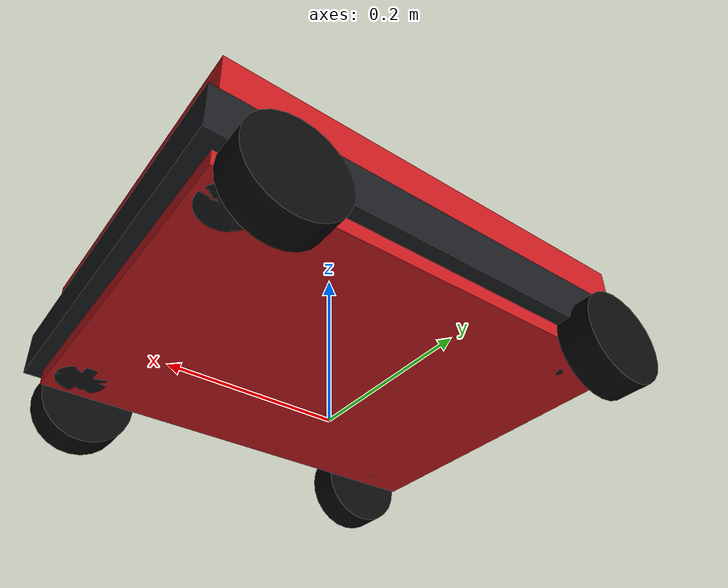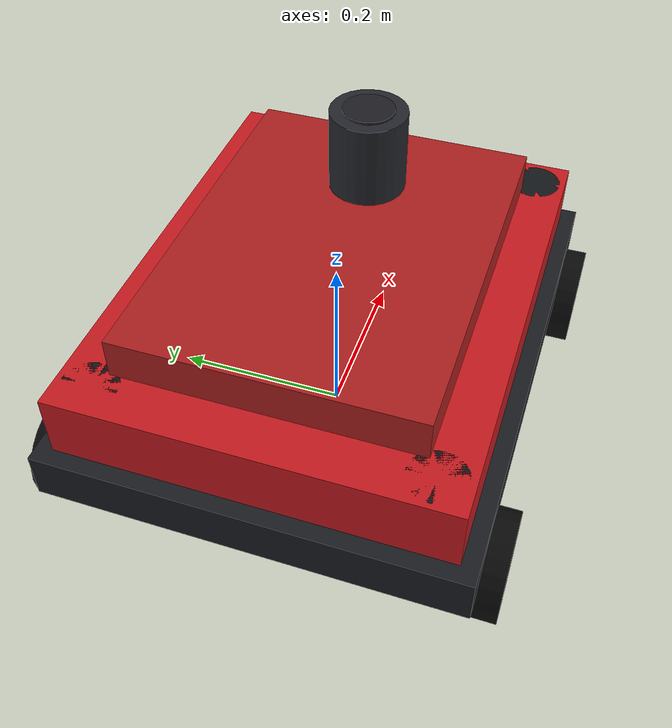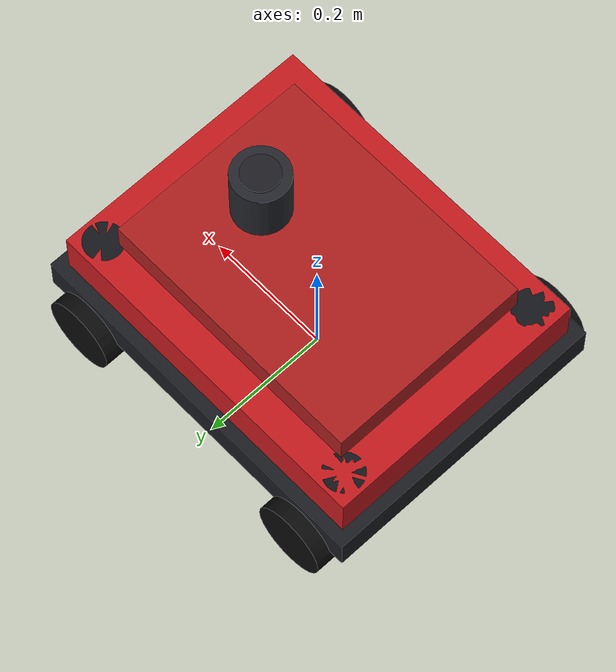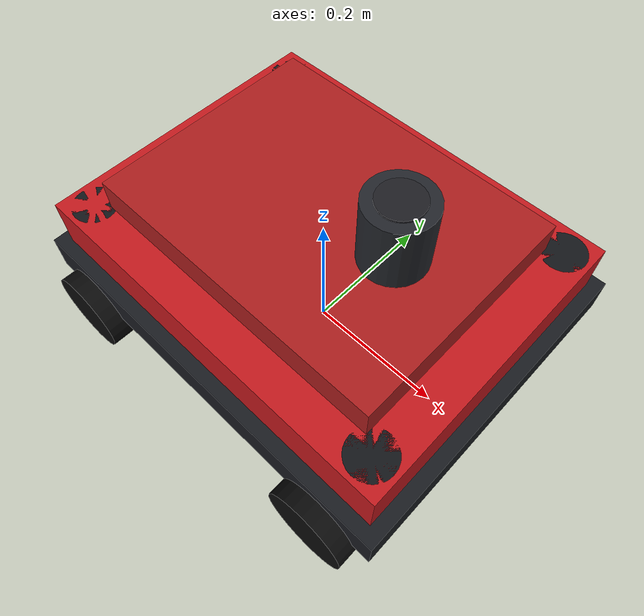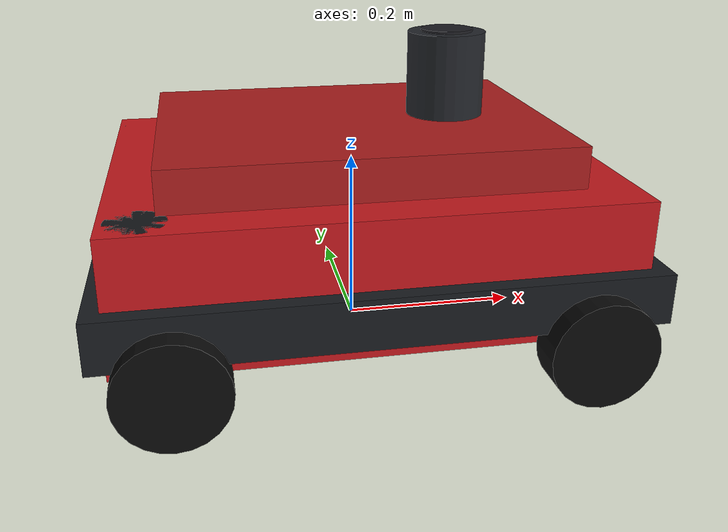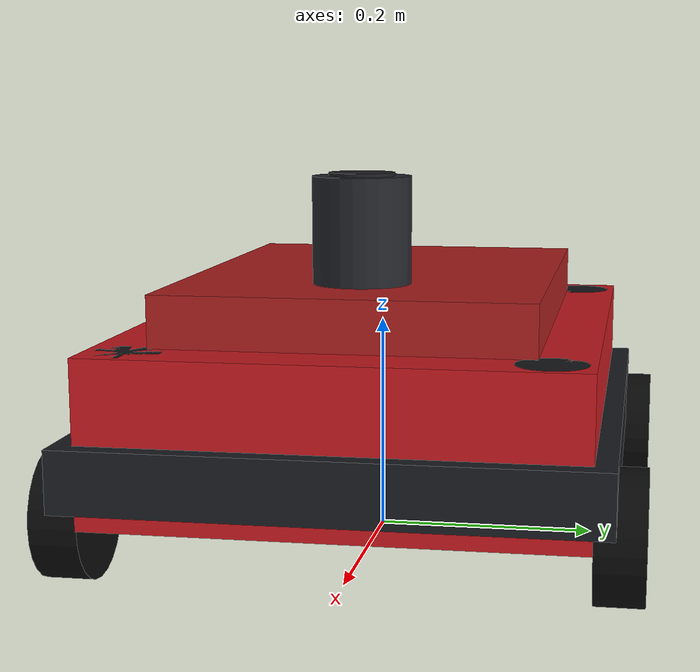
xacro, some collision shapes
<?xml version="1.0"?>
<robot xmlns:xacro="http://www.ros.org/wiki/xacro" name="omni_mecanum_amr">
  <xacro:arg name="robot_name" default="omni_1"/>
  <xacro:arg name="controllers_file" default=""/>
  <xacro:include filename="$(find hetero_fleet_description)/urdf/common.xacro"/>
  <xacro:property name="controllers_file" value="$(arg controllers_file)"/>
  <xacro:property name="robot_name" value="$(arg robot_name)"/>
  <xacro:property name="s" value="0.602770520669"/>
  <xacro:property name="base_length" value="${0.90 * s}"/>
  <xacro:property name="base_width" value="${0.70 * s}"/>
  <xacro:property name="base_height" value="${0.24 * s}"/>
  <xacro:property name="wheel_radius" value="${0.095 * s}"/>
  <xacro:property name="wheel_width" value="${0.070 * s}"/>
  <link name="base_footprint"/>
  <link name="base_link">
    <inertial><mass value="${42.0 * s**3}"/><inertia ixx="${1.75 * s**5}" ixy="0" ixz="0" iyy="${2.25 * s**5}" iyz="0" izz="${3.10 * s**5}"/></inertial>
    <visual><origin xyz="0 0 0"/><geometry><mesh filename="package://hetero_fleet_description/meshes/omni_shell.stl" scale="${s} ${s} ${s}"/></geometry><material name="red"><color rgba="0.78 0.10 0.12 1"/></material></visual>
    <collision><origin xyz="0 0 ${base_height / 2}"/><geometry><box size="${base_length} ${base_width} ${base_height}"/></geometry></collision>
  </link>
  <joint name="base_footprint_joint" type="fixed"><parent link="base_footprint"/><child link="base_link"/><origin xyz="0 0 ${wheel_radius}"/></joint>
  <link name="underbody_link"><visual><origin xyz="0 0 ${0.06 * s}"/><geometry><box size="${0.82 * s} ${0.62 * s} ${0.12 * s}"/></geometry><material name="underbody"><color rgba="0.14 0.15 0.16 1"/></material></visual><collision><origin xyz="0 0 ${0.06 * s}"/><geometry><box size="${0.82 * s} ${0.62 * s} ${0.12 * s}"/></geometry></collision></link>
  <joint name="underbody_joint" type="fixed"><parent link="base_link"/><child link="underbody_link"/><origin xyz="0 0 ${0.01 * s}"/></joint>
  <link name="omni_bumper_link"><visual><origin xyz="0 0 ${0.045 * s}"/><geometry><box size="${0.96 * s} ${0.76 * s} ${0.09 * s}"/></geometry><material name="bumper"><color rgba="0.10 0.11 0.13 1"/></material></visual><collision><origin xyz="0 0 ${0.045 * s}"/><geometry><box size="${0.96 * s} ${0.76 * s} ${0.09 * s}"/></geometry></collision></link>
  <joint name="omni_bumper_joint" type="fixed"><parent link="base_link"/><child link="omni_bumper_link"/><origin xyz="0 0 ${0.03 * s}"/></joint>
  <link name="omni_deck_link"><visual><origin xyz="0 0 ${0.035 * s}"/><geometry><box size="${0.72 * s} ${0.54 * s} ${0.08 * s}"/></geometry><material name="deck"><color rgba="0.68 0.12 0.12 1"/></material></visual><collision><origin xyz="0 0 ${0.035 * s}"/><geometry><box size="${0.72 * s} ${0.54 * s} ${0.08 * s}"/></geometry></collision></link>
  <joint name="omni_deck_joint" type="fixed"><parent link="base_link"/><child link="omni_deck_link"/><origin xyz="0 0 ${base_height}"/></joint>

  <link name="front_left_corner_guard"><visual><origin xyz="0 0 ${0.12 * s}"/><geometry><cylinder radius="${0.05 * s}" length="${0.24 * s}"/></geometry><material name="guard"><color rgba="0.08 0.09 0.10 1"/></material></visual><collision><origin xyz="0 0 ${0.12 * s}"/><geometry><cylinder radius="${0.05 * s}" length="${0.24 * s}"/></geometry></collision></link>
  <joint name="front_left_corner_guard_joint" type="fixed"><parent link="base_link"/><child link="front_left_corner_guard"/><origin xyz="${0.39 * s} ${0.29 * s} 0"/></joint>
  <link name="front_right_corner_guard"><visual><origin xyz="0 0 ${0.12 * s}"/><geometry><cylinder radius="${0.05 * s}" length="${0.24 * s}"/></geometry><material name="guard"><color rgba="0.08 0.09 0.10 1"/></material></visual><collision><origin xyz="0 0 ${0.12 * s}"/><geometry><cylinder radius="${0.05 * s}" length="${0.24 * s}"/></geometry></collision></link>
  <joint name="front_right_corner_guard_joint" type="fixed"><parent link="base_link"/><child link="front_right_corner_guard"/><origin xyz="${0.39 * s} ${-0.29 * s} 0"/></joint>
  <link name="rear_left_corner_guard"><visual><origin xyz="0 0 ${0.12 * s}"/><geometry><cylinder radius="${0.05 * s}" length="${0.24 * s}"/></geometry><material name="guard"><color rgba="0.08 0.09 0.10 1"/></material></visual><collision><origin xyz="0 0 ${0.12 * s}"/><geometry><cylinder radius="${0.05 * s}" length="${0.24 * s}"/></geometry></collision></link>
  <joint name="rear_left_corner_guard_joint" type="fixed"><parent link="base_link"/><child link="rear_left_corner_guard"/><origin xyz="${-0.39 * s} ${0.29 * s} 0"/></joint>
  <link name="rear_right_corner_guard"><visual><origin xyz="0 0 ${0.12 * s}"/><geometry><cylinder radius="${0.05 * s}" length="${0.24 * s}"/></geometry><material name="guard"><color rgba="0.08 0.09 0.10 1"/></material></visual><collision><origin xyz="0 0 ${0.12 * s}"/><geometry><cylinder radius="${0.05 * s}" length="${0.24 * s}"/></geometry></collision></link>
  <joint name="rear_right_corner_guard_joint" type="fixed"><parent link="base_link"/><child link="rear_right_corner_guard"/><origin xyz="${-0.39 * s} ${-0.29 * s} 0"/></joint>

  <xacro:macro name="mecanum_wheel" params="name x y">
    <link name="${name}_wheel_link">
      <inertial><mass value="${0.65 * s**3}"/><inertia ixx="${0.004 * s**5}" ixy="0" ixz="0" iyy="${0.002 * s**5}" iyz="0" izz="${0.004 * s**5}"/></inertial>
      <visual><origin rpy="${pi / 2} 0 0"/><geometry><cylinder radius="${wheel_radius}" length="${wheel_width}"/></geometry><material name="rubber"><color rgba="0.04 0.04 0.04 1"/></material></visual>
      <collision><origin rpy="${pi / 2} 0 0"/><geometry><cylinder radius="${wheel_radius}" length="${wheel_width}"/></geometry></collision>
    </link>
    <joint name="${name}_wheel_joint" type="continuous"><parent link="base_link"/><child link="${name}_wheel_link"/><origin xyz="${x} ${y} 0"/><axis xyz="0 1 0"/><limit effort="15" velocity="18"/></joint>
  </xacro:macro>
  <xacro:mecanum_wheel name="front_left" x="${base_length / 2 - 0.10 * s}" y="${base_width / 2 + wheel_width / 2}"/>
  <xacro:mecanum_wheel name="front_right" x="${base_length / 2 - 0.10 * s}" y="${-base_width / 2 - wheel_width / 2}"/>
  <xacro:mecanum_wheel name="rear_left" x="${-base_length / 2 + 0.10 * s}" y="${base_width / 2 + wheel_width / 2}"/>
  <xacro:mecanum_wheel name="rear_right" x="${-base_length / 2 + 0.10 * s}" y="${-base_width / 2 - wheel_width / 2}"/>

  <link name="lidar_link">
    <inertial><mass value="0.15"/><inertia ixx="0.0002" ixy="0" ixz="0" iyy="0.0002" iyz="0" izz="0.0003"/></inertial>
    <visual><geometry><cylinder radius="${0.048 * s}" length="${0.05 * s}"/></geometry><material name="lidar"><color rgba="0.12 0.12 0.14 1"/></material></visual><collision><geometry><cylinder radius="${0.048 * s}" length="${0.05 * s}"/></geometry></collision>
  </link>
  <link name="lidar_mount_link"><visual><origin xyz="0 0 ${0.08 * s}"/><geometry><cylinder radius="${0.072 * s}" length="${0.16 * s}"/></geometry><material name="mount"><color rgba="0.14 0.15 0.17 1"/></material></visual><collision><origin xyz="0 0 ${0.08 * s}"/><geometry><cylinder radius="${0.065 * s}" length="${0.14 * s}"/></geometry></collision></link>
  <joint name="lidar_mount_joint" type="fixed"><parent link="omni_deck_link"/><child link="lidar_mount_link"/><origin xyz="${0.18 * s} 0 ${0.07 * s}"/></joint>
  <joint name="lidar_joint" type="fixed"><parent link="lidar_mount_link"/><child link="lidar_link"/><origin xyz="0 0 ${0.14 * s}"/></joint>
  <!-- Lidar height lands at ~0.29 m, inside the map's obstacle band of
       maps/geomap.pgm, so scan and map agree about what is in the way. -->
  <gazebo reference="lidar_link"><sensor name="${robot_name}_lidar" type="gpu_lidar"><always_on>1</always_on><visualize>false</visualize><update_rate>20</update_rate><topic>/${robot_name}/scan</topic><frame_id>lidar_link</frame_id><lidar><scan><horizontal><samples>1080</samples><resolution>1</resolution><min_angle>-3.14159</min_angle><max_angle>3.14159</max_angle></horizontal></scan><range><min>0.10</min><max>15.0</max><resolution>0.01</resolution></range></lidar></sensor></gazebo>
  <xacro:fleet_gazebo_material link="base_link" rgba="0.78 0.10 0.12 1"/>

       mu1 runs along fdir1 and is the direction the rollers spin freely, so
       it is kept deliberately small; mu2 grips across it and carries the
       thrust, including the whole of a strafe. Tuning both was tried (0.02 /
       1.0 -> 0.01 / 2.0) and changed the strafe response by under 1%, so the
       original values are kept - the shortfall is not a friction tuning
       problem. -->
  <xacro:fleet_gazebo_wheel_dynamics link="front_left_wheel_link"  mu1="0.02" mu2="1.0" kp="100000" kd="1.0" fdir1="1 0 1"/>
  <xacro:fleet_gazebo_wheel_dynamics link="rear_left_wheel_link"   mu1="0.02" mu2="1.0" kp="100000" kd="1.0" fdir1="1 0 1"/>
  <xacro:fleet_gazebo_wheel_dynamics link="front_right_wheel_link" mu1="0.02" mu2="1.0" kp="100000" kd="1.0" fdir1="1 0 -1"/>
  <xacro:fleet_gazebo_wheel_dynamics link="rear_right_wheel_link"  mu1="0.02" mu2="1.0" kp="100000" kd="1.0" fdir1="1 0 -1"/>
  <xacro:fleet_ros2_control name="${robot_name}" wheel_joints="${['front_left_wheel_joint', 'front_right_wheel_joint', 'rear_left_wheel_joint', 'rear_right_wheel_joint']}" controller_type="mecanum" controllers_file="${controllers_file}" namespace="${robot_name}"/>
</robot>
